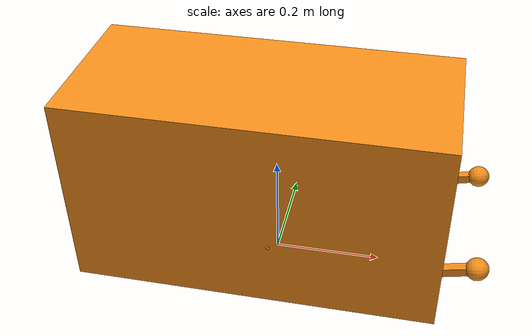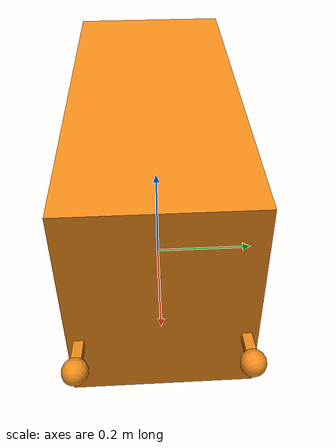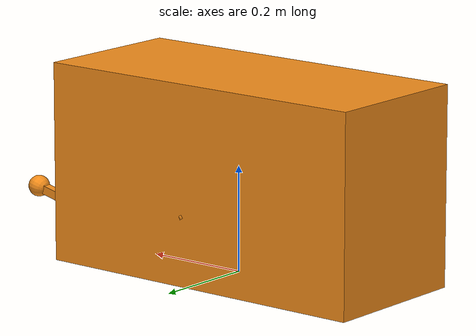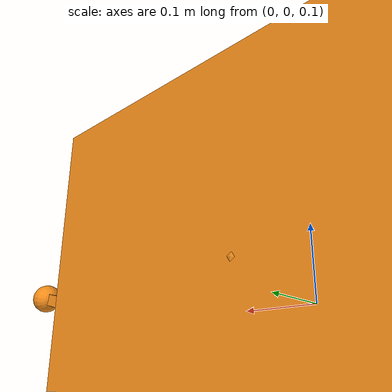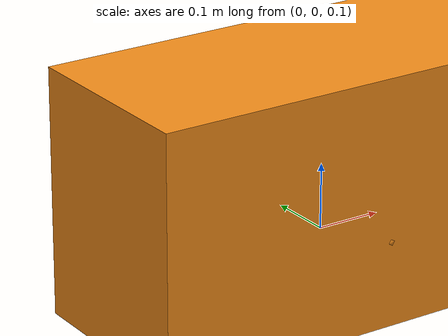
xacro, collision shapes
<?xml version="1.0" ?>
<robot name="a1_highlevel_robot" xmlns:xacro="http://ros.org/wiki/xacro">

  <xacro:arg name="laser_visual" default="false"/> <!--  visualize laser in gazebo -->
  <xacro:arg name="imu_visual"   default="false"/> <!--  visualize imu in gazebo -->

  <xacro:arg name="lidar"         default="true"/> <!--  add lidar (hokuyo UST-10LX) simulation -->
  <xacro:arg name="depth_camera"  default="false"/> <!--  add depth camera (realsense D435) simulation -->

  <xacro:arg name="fixed_legs"   default="false"/> <!--  if true fix leg joints in place, needed for high level simulation -->

  <xacro:include filename="$(find a1_description)/urdf/a1_const.xacro"/>
  <xacro:include filename="$(find a1_description)/urdf/backpack_const_v2.xacro"/>
  <xacro:include filename="$(find a1_description)/urdf/common_properties.xacro"/>
  <xacro:include filename="$(find a1_description)/urdf/hokuyo_ust10.urdf.xacro" />
  <xacro:include filename="$(find a1_description)/urdf/_d435.urdf.xacro" />

  <!-- choose between fixed or free leg joints -->
  <xacro:if value="$(arg fixed_legs)">
    <xacro:include filename="$(find a1_description)/urdf/leg_fixed.xacro"/>
  </xacro:if>
  <xacro:unless value="$(arg fixed_legs)">
    <xacro:include filename="$(find a1_description)/urdf/leg.xacro"/>
  </xacro:unless>

  <xacro:property name="laser_topic" value="/scan"/>

  <!-- root link, on the ground just below the model origin -->
  <link name="base_footprint">
   <visual>
      <origin xyz="0 0 0" rpy="0 0 0" />
      <geometry>
        <box size="0.001 0.001 0.001" />
      </geometry>
    </visual>
  </link>
  <!-- when used for the robot state publisher not in simulation, this tf won't be broadcasted -->
  <joint name="base_link_joint" type="fixed">
    <origin xyz="0.0 0 ${base_link_height}" rpy="0 0 0" />
    <parent link="base_footprint"/>
    <child link="base_link" />
  </joint>

  <!-- Robot Trunk -->
  <link name="base_link">
    <visual>
        <origin rpy="0 0 0" xyz="0 0 0"/>
        <geometry>
            <mesh filename="package://a1_description/meshes/trunk.dae" scale="1 1 1"/>
        </geometry>
        <material name="orange"/>
    </visual>
    <visual>
        <origin xyz="${backpack_mesh_x} ${backpack_mesh_y} ${backpack_mesh_z}" rpy="0 0 0"/>
        <geometry>
            <mesh filename="package://a1_description/meshes/backpack_mesh.stl" scale="0.001 0.001 0.001"/>
        </geometry>
        <material name="grey"/>
    </visual>

    <collision>
        <origin rpy="0 0 0" xyz="${boxcoll_x} ${boxcoll_y} ${boxcoll_z}"/>
        <geometry>
            <box size="${boxcoll_length} ${boxcoll_width} ${boxcoll_height}"/>
        </geometry>
    </collision>
    <inertial>
        <origin rpy="0 0 0" xyz="${trunk_com_x} ${trunk_com_y} ${trunk_com_z}"/>
        <mass value="50" />
        <inertia ixx="50.0" ixy="0.0" ixz="0.0"
            iyy="50.0" iyz="0.0"
            izz="50.0" />
    </inertial>
    </link>

    <xacro:leg name="FR" mirror="-1" mirror_dae="False" front_hind="1" front_hind_dae="True">
        <origin rpy="0 0 0" xyz="${leg_offset_x} ${-leg_offset_y} 0"/>
    </xacro:leg>

    <xacro:leg name="FL" mirror="1" mirror_dae="True" front_hind="1" front_hind_dae="True">
        <origin rpy="0 0 0" xyz="${leg_offset_x} ${leg_offset_y} 0"/>
    </xacro:leg>

    <xacro:leg name="RR" mirror="-1" mirror_dae="False" front_hind="-1" front_hind_dae="False">
        <origin rpy="0 0 0" xyz="${-leg_offset_x} ${-leg_offset_y} 0"/>
    </xacro:leg>

    <xacro:leg name="RL" mirror="1" mirror_dae="True" front_hind="-1" front_hind_dae="False">
        <origin rpy="0 0 0" xyz="${-leg_offset_x} ${leg_offset_y} 0"/>
    </xacro:leg>

    <!-- IMU -->
    <joint name="imu_joint" type="fixed">
        <parent link="base_link"/>
        <child link="imu_link"/>
        <origin rpy="0 0 0" xyz="0 0 0"/>
    </joint>

    <link name="imu_link">
        <inertial>
            <mass value="0.001"/>
            <origin rpy="0 0 0" xyz="0 0 0"/>
            <inertia ixx="0.0001" ixy="0" ixz="0" iyy="0.0001" iyz="0" izz="0.0001"/>
        </inertial>
        <visual>
            <origin rpy="0 0 0" xyz="0 0 0"/>
            <geometry>
                <box size="0.001 0.001 0.001"/>
            </geometry>
            <material name="red"/>
        </visual>
        <collision>
            <origin rpy="0 0 0" xyz="0 0 0"/>
            <geometry>
                <box size=".001 .001 .001"/>
            </geometry>
        </collision>
    </link>

  <!-- Hokuyo UST10 -->
  <xacro:if value="$(arg lidar)">
    <xacro:hokuyo_ust10_mount topic="${laser_topic}" prefix="hokuyo" parent_link="base_link" laser_visual="$(arg laser_visual)">
      <origin xyz="${laser_base_x} ${laser_base_y} ${laser_base_z}" rpy="0 0 0" />
    </xacro:hokuyo_ust10_mount>
  </xacro:if>

  <!-- Realsense D435 depth camera -->
  <xacro:if value="$(arg depth_camera)">
    <xacro:sensor_d435 parent="base_link" color_width="${rs_color_width}" color_height="${rs_color_height}" color_fps="${rs_color_fps}"
        depth_width="${rs_depth_width}" depth_height="${rs_depth_height}" depth_fps="${rs_depth_fps}">
      <origin xyz="${camera_base_x} ${camera_base_y} ${camera_base_z}" rpy="0 0 0"/>
    </xacro:sensor_d435>
  </xacro:if>

  <!-- Gazebo things -->
  <gazebo reference="imu_link">
    <sensor type="imu" name="imu">
      <always_on>true</always_on>
      <visualize>$(arg imu_visual)</visualize>
    </sensor>
    <material>Gazebo/FlatBlack</material>
  </gazebo>

  <gazebo>
    <plugin name="object_controller" filename="libgazebo_ros_planar_move.so">
      <commandTopic>cmd_vel_sim</commandTopic>
      <odometryTopic>odom_sim</odometryTopic>
      <odometryFrame>odom</odometryFrame>
      <odometryRate>50.0</odometryRate>
      <robotBaseFrame>base_footprint</robotBaseFrame>
    </plugin>
  </gazebo>

  <gazebo>
    <plugin name="imu_plugin" filename="libgazebo_ros_imu.so">
      <alwaysOn>true</alwaysOn>
      <bodyName>imu_link</bodyName>
      <frameName>imu_link</frameName>
      <topicName>imu</topicName>
      <serviceName>imu_service</serviceName>
      <gaussianNoise>0.0</gaussianNoise>
      <updateRate>0</updateRate>
      <imu>
        <noise>
          <type>gaussian</type>
          <rate>
            <mean>0.0</mean>
            <stddev>2e-4</stddev>
            <bias_mean>0.0000075</bias_mean>
            <bias_stddev>0.0000008</bias_stddev>
          </rate>
          <accel>
            <mean>0.0</mean>
            <stddev>1.7e-2</stddev>
            <bias_mean>0.1</bias_mean>
            <bias_stddev>0.001</bias_stddev>
          </accel>
        </noise>
      </imu>
    </plugin>
  </gazebo>

  <!-- ground truth -->
  <gazebo>
    <plugin name="p3d_base_controller" filename="libgazebo_ros_p3d.so">
      <alwaysOn>true</alwaysOn>
      <updateRate>50.0</updateRate>
      <bodyName>base_footprint</bodyName>
      <topicName>base_pose_ground_truth</topicName>
      <gaussianNoise>0.01</gaussianNoise>
      <frameName>map</frameName>
      <!-- initialize odometry for fake localization -->
      <xyzOffsets>0 0 0</xyzOffsets>
      <rpyOffsets>0 0 0</rpyOffsets>
    </plugin>
  </gazebo>

</robot>

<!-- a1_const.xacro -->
<robot name="a1_description" xmlns:xacro="http://www.ros.org/wiki/xacro">

    <!-- Constants for robot dimensions -->
    <xacro:property name="PI" value="3.1415926535897931"/>
    <xacro:property name="stick_mass" value="0.00001"/>

    <!-- simplified collision value -->
    <xacro:property name="trunk_width" value="0.194"/>
    <xacro:property name="trunk_length" value="0.267"/>
    <xacro:property name="trunk_height" value="0.114"/>
    <xacro:property name="hip_radius" value="0.046"/>
    <xacro:property name="hip_length" value="0.04"/>
    <xacro:property name="thigh_shoulder_radius" value="0.041"/>
    <xacro:property name="thigh_shoulder_length" value="0.032"/>
    <xacro:property name="thigh_width" value="0.0245"/>
    <xacro:property name="thigh_height" value="0.034"/>
    <xacro:property name="calf_width" value="0.016"/>
    <xacro:property name="calf_height" value="0.016"/>
    <xacro:property name="foot_radius" value="0.02"/>
    <xacro:property name="stick_radius" value="0.01"/>
    <xacro:property name="stick_length" value="0.2"/>

    <!-- kinematic value -->
    <xacro:property name="thigh_offset" value="0.0838"/>
    <xacro:property name="thigh_length" value="0.2"/>
    <xacro:property name="calf_length" value="0.2"/>

    <!-- leg offset from trunk center value -->
    <xacro:property name="leg_offset_x" value="0.1805"/>
    <xacro:property name="leg_offset_y" value="0.047"/>
    <xacro:property name="trunk_offset_z" value="0.01675"/>
    <xacro:property name="hip_offset" value="0.065"/>

    <!-- joint limits -->
    <xacro:property name="damping" value="0"/>
    <xacro:property name="friction" value="0"/>
    <xacro:property name="hip_max" value="46"/>
    <xacro:property name="hip_min" value="-46"/>
    <xacro:property name="hip_velocity_max" value="21"/>
    <xacro:property name="hip_torque_max" value="33.5"/>
    <xacro:property name="thigh_max" value="240"/>
    <xacro:property name="thigh_min" value="-60"/>
    <xacro:property name="thigh_velocity_max" value="21"/>
    <xacro:property name="thigh_torque_max" value="33.5"/>
    <xacro:property name="calf_max" value="-52.5"/>
    <xacro:property name="calf_min" value="-154.5"/>
    <xacro:property name="calf_velocity_max" value="21"/>
    <xacro:property name="calf_torque_max" value="33.5"/>

    <!-- dynamics inertial value        total 13.9kg -->
    <!-- trunk -->
    <xacro:property name="trunk_mass" value="6.0"/>
    <xacro:property name="trunk_com_x" value="0.0000"/>
    <xacro:property name="trunk_com_y" value="0.0041"/>
    <xacro:property name="trunk_com_z" value="-0.0005"/>
    <xacro:property name="trunk_ixx" value="0.0158533"/>
    <xacro:property name="trunk_ixy" value="-0.0000366"/>
    <xacro:property name="trunk_ixz" value="-0.0000611"/>
    <xacro:property name="trunk_iyy" value="0.0377999"/>
    <xacro:property name="trunk_iyz" value="-0.0000275"/>
    <xacro:property name="trunk_izz" value="0.0456542"/>

    <!-- hip (left front) -->
    <xacro:property name="hip_mass" value="0.595"/>
    <xacro:property name="hip_com_x" value="-0.003875"/>
    <xacro:property name="hip_com_y" value="0.001622"/>
    <xacro:property name="hip_com_z" value="0.000042"/>
    <xacro:property name="hip_ixx" value="0.000402747"/>
    <xacro:property name="hip_ixy" value="-0.000008709"/>
    <xacro:property name="hip_ixz" value="-0.000000297"/>
    <xacro:property name="hip_iyy" value="0.000691123"/>
    <xacro:property name="hip_iyz" value="-0.000000545"/>
    <xacro:property name="hip_izz" value="0.000487919"/>

    <!-- thigh -->
    <xacro:property name="thigh_mass" value="0.888"/>
    <xacro:property name="thigh_com_x" value="-0.003574"/>
    <xacro:property name="thigh_com_y" value="-0.019529"/>
    <xacro:property name="thigh_com_z" value="-0.030323"/>
    <xacro:property name="thigh_ixx" value="0.005251806"/>
    <xacro:property name="thigh_ixy" value="-0.000002168"/>
    <xacro:property name="thigh_ixz" value="0.000346889"/>
    <xacro:property name="thigh_iyy" value="0.005000475"/>
    <xacro:property name="thigh_iyz" value="-0.000028174"/>
    <xacro:property name="thigh_izz" value="0.001110200"/>

    <!-- calf -->
    <xacro:property name="calf_mass" value="0.151"/>
    <xacro:property name="calf_com_x" value="0.007105"/>
    <xacro:property name="calf_com_y" value="-0.000239"/>
    <xacro:property name="calf_com_z" value="-0.096933"/>
    <xacro:property name="calf_ixx" value="0.002344758"/>
    <xacro:property name="calf_ixy" value="0.0"/>
    <xacro:property name="calf_ixz" value="-0.000141275"/>
    <xacro:property name="calf_iyy" value="0.002360755"/>
    <xacro:property name="calf_iyz" value="0.0"/>
    <xacro:property name="calf_izz" value="0.000031158"/>

    <!-- foot -->
    <xacro:property name="foot_mass" value="0.06"/>

</robot>

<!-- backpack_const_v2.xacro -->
<robot name="backpack_v1_description" xmlns:xacro="http://www.ros.org/wiki/xacro">

    <xacro:include filename="$(find a1_description)/urdf/a1_const.xacro"/>

    <!-- real height measured from rosbags (base_link is center of the robot trunk) -->
    <xacro:property name="base_link_height" value="0.283"/>

    <!-- backpack (box approx) size and center position relative to base_link -->
    <xacro:property name="backpack_length" value="0.355"/>
    <xacro:property name="backpack_width" value="0.20"/>
    <xacro:property name="backpack_height" value="0.071"/> <!-- 60mm height + 2*3mm + 5mm -->

    <xacro:property name="backpack_x" value="0.0"/>
    <xacro:property name="backpack_y" value="0.0"/>
    <xacro:property name="backpack_z" value="${backpack_height/2 + trunk_height/2}"/>

    <!-- origin of the CAD mesh -->
    <xacro:property name="backpack_mesh_x" value="${backpack_x-0.0875}"/>
    <xacro:property name="backpack_mesh_y" value="${backpack_y}"/>
    <xacro:property name="backpack_mesh_z" value="${backpack_z-backpack_height/2+0.006}"/>

    <!-- lidar base position relative to base_link -->
    <xacro:property name="laser_base_x" value="0.085"/> <!-- see from cad files, top body-->
    <xacro:property name="laser_base_y" value="0.0"/>
    <xacro:property name="laser_base_z" value="0.131"/> <!-- trunk_height/2 (0.114/2) + backpack_height + 3mm adepter = -->

    <!-- realsense camer position relative to base_link -->
    <xacro:property name="camera_base_x" value="0.24"/> <!-- see from cad files, top body-->
    <xacro:property name="camera_base_y" value="0.0"/>
    <xacro:property name="camera_base_z" value="0.057"/> <!-- trunk_height/2 (0.114/2) + 0.005 = -->

    <!--whole robot box collision approx (used for trunk collision), except for hokuyo -->
    <xacro:property name="boxcoll_length_front" value="${backpack_length/2 + 0.14}"/>
    <xacro:property name="boxcoll_length_back" value="${backpack_length/2 + 0.18}"/>

    <xacro:property name="boxcoll_length" value="${boxcoll_length_front + boxcoll_length_back}"/>
    <xacro:property name="boxcoll_width" value="${backpack_width + 0.10}"/>
    <xacro:property name="boxcoll_height" value="${base_link_height+backpack_height/2+trunk_height/2}"/>

    <xacro:property name="boxcoll_x" value="${boxcoll_length_front/2-boxcoll_length_back/2}"/>
    <xacro:property name="boxcoll_y" value="0"/>
    <xacro:property name="boxcoll_z" value="${trunk_height/4.0+backpack_height/4-base_link_height/2.0}"/>

    <!-- legs position used only for visualization (calculated using  base_link_height,thigh_length=calf_length) -->
    <xacro:property name="leg_thigh_angle" value="0.79"/>
    <xacro:property name="leg_calf_angle" value="-1.68"/>

    <!-- legs visual boxes approx (just for visualization). Positions relative to base link -->

    <!-- Realsense simulation parameters -->
    <xacro:property name="rs_color_width" value="192"/>
    <xacro:property name="rs_color_height" value="108"/>
    <xacro:property name="rs_color_fps" value="15.0"/>
    <xacro:property name="rs_depth_width" value="128"/>
    <xacro:property name="rs_depth_height" value="72"/>
    <xacro:property name="rs_depth_fps" value="15.0"/>

</robot>

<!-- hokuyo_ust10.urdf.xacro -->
<robot xmlns:xacro="http://ros.org/wiki/xacro">
  <xacro:macro name="hokuyo_ust10_mount" params="prefix topic parent_link laser_visual min_angle:=-2.35619 max_angle:=2.35619 *origin">

    <xacro:macro name="hokuyo_ust10" params="frame:=laser_link topic:=scan sample_size:=720 update_rate:=50
               min_angle:=-2.35619 max_angle:=2.35619 min_range:=0.1 max_range:=30.0 robot_namespace:=/">
      <link name="${frame}">
        <inertial>
          <mass value="1.1" />
          <origin xyz="0 0 0" />
          <inertia ixx="${0.0833333 * 1.1 * (0.102*0.102 + 0.152*0.152)}" ixy="0.0" ixz="0.0"
            iyy="${0.0833333 * 1.1 * (0.105*0.105 + 0.152*0.152)}" iyz="0.0"
            izz="${0.0833333 * 1.1 * (0.105*0.105 + 0.102*0.102)}" />
        </inertial>
      </link>

      <gazebo reference="${frame}">
        <turnGravityOff>true</turnGravityOff>
        <sensor type="ray" name="${frame}">
          <pose>0 0 0 0 0 0</pose>
          <visualize>${laser_visual}</visualize>
          <update_rate>${update_rate}</update_rate>
          <ray>
            <scan>
              <horizontal>
                <samples>${sample_size}</samples>
                <resolution>1</resolution>
                <min_angle>${min_angle}</min_angle>
                <max_angle>${max_angle}</max_angle>
              </horizontal>
            </scan>
            <range>
              <min>${min_range}</min>
              <max>${max_range}</max>
              <resolution>0.01</resolution>
            </range>
            <noise>
              <type>gaussian</type>
              <mean>0.0</mean>
              <stddev>0.001</stddev>
            </noise>
          </ray>
          <plugin name="gazebo_ros_laser" filename="libgazebo_ros_laser.so">
            <topicName>${topic}</topicName>
            <frameName>${frame}</frameName>
            <robotNamespace>${robot_namespace}</robotNamespace>
          </plugin>
        </sensor>
      </gazebo>
    </xacro:macro>

    <xacro:hokuyo_ust10 frame="laser" topic="${topic}"/>

    <joint name="${prefix}_laser_mount_joint" type="fixed">
      <xacro:insert_block name="origin" />
      <parent link="${parent_link}" />
      <child link="${prefix}_laser_mount" />
    </joint>

    <link name="${prefix}_laser_mount">
      <visual>
        <origin xyz="0 0 0" rpy="0 0 0" />
        <geometry>
          <!-- Origin of this mesh is the base of the bracket. -->
          <mesh filename="package://a1_description/meshes/hokuyo_ust10.stl" />
        </geometry>
        <material name="grey" />
      </visual>
    </link>

    <joint name="${prefix}_laser_joint" type="fixed">
      <!-- This offset is from the base of the bracket to the LIDAR's focal point. -->
      <origin xyz="0 0 0.0474" rpy="0 0 0" />
      <parent link="${prefix}_laser_mount" />
      <child link="laser" />
    </joint>

    <gazebo reference="${prefix}_laser_mount">
      <material>Gazebo/DarkGrey</material>
    </gazebo>

  </xacro:macro>

</robot>

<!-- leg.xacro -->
<robot xmlns:xacro="http://www.ros.org/wiki/xacro">

    <xacro:include filename="$(find a1_description)/urdf/transmission.xacro"/>
    <xacro:include filename="$(find a1_description)/urdf/backpack_const_v2.xacro"/>

    <xacro:macro name="leg" params="name mirror mirror_dae front_hind front_hind_dae *origin">

        <joint name="${name}_hip_joint" type="revolute">
            <xacro:insert_block name="origin"/>
            <parent link="base_link"/>
            <child link="${name}_hip"/>
            <axis xyz="1 0 0"/>
            <dynamics damping="${damping}" friction="${friction}"/>
            <xacro:if value="${(mirror_dae == True)}">
                <limit effort="${hip_torque_max}" velocity="${hip_velocity_max}" lower="${hip_min*PI/180.0}" upper="${hip_max*PI/180.0}"/>
            </xacro:if>
            <xacro:if value="${(mirror_dae == False)}">
                <limit effort="${hip_torque_max}" velocity="${hip_velocity_max}" lower="${-hip_max*PI/180.0}" upper="${-hip_min*PI/180.0}"/>
            </xacro:if>
        </joint>

        <link name="${name}_hip">
            <visual>
                <xacro:if value="${(mirror_dae == True) and (front_hind_dae == True)}">
                    <origin rpy="0 0 0" xyz="0 0 0"/>
                </xacro:if>
                <xacro:if value="${(mirror_dae == False) and (front_hind_dae == True)}">
                    <origin rpy="${PI} 0 0" xyz="0 0 0"/>
                </xacro:if>
                <xacro:if value="${(mirror_dae == True) and (front_hind_dae == False)}">
                    <origin rpy="0 ${PI} 0" xyz="0 0 0"/>
                </xacro:if>
                <xacro:if value="${(mirror_dae == False) and (front_hind_dae == False)}">
                    <origin rpy="${PI} ${PI} 0" xyz="0 0 0"/>
                </xacro:if>
                <geometry>
                    <mesh filename="package://a1_description/meshes/hip.dae" scale="1 1 1"/>
                </geometry>
                <material name="orange"/>
            </visual>
            <collision>
                <origin rpy="${PI/2.0} 0 0" xyz="0 0 0"/>
                <geometry>
                    <cylinder length="${hip_length}" radius="${hip_radius}"/>
                </geometry>
            </collision>
            <inertial>
                <origin rpy="0 0 0" xyz="${hip_com_x*front_hind} ${hip_com_y*mirror} ${hip_com_z}"/>
                <mass value="${hip_mass}"/>
                <inertia
                    ixx="${hip_ixx}" ixy="${hip_ixy*mirror*front_hind}" ixz="${hip_ixz*front_hind}"
                    iyy="${hip_iyy}" iyz="${hip_iyz*mirror}"
                    izz="${hip_izz}"/>
            </inertial>
        </link>

        <joint name="${name}_hip_fixed" type="fixed">
            <origin rpy="0 0 0" xyz="0 ${(thigh_shoulder_length/2.0+hip_offset)*mirror} 0"/>
            <parent link="${name}_hip"/>
            <child link="${name}_thigh_shoulder"/>
        </joint>

        <!-- this link is only for collision -->
        <link name="${name}_thigh_shoulder">
            <collision>
                <origin rpy="${PI/2.0} 0 0" xyz="0 0 0"/>
                <geometry>
                    <cylinder length="${thigh_shoulder_length}" radius="${thigh_shoulder_radius}"/>
                </geometry>
            </collision>
        </link>

        <joint name="${name}_thigh_joint" type="revolute">
            <origin rpy="0 0 0" xyz="0 ${thigh_offset*mirror} 0"/>
            <parent link="${name}_hip"/>
            <child link="${name}_thigh"/>
            <axis xyz="0 1 0"/>
            <dynamics damping="${damping}" friction="${friction}"/>
            <limit effort="${thigh_torque_max}" velocity="${thigh_velocity_max}" lower="${thigh_min*PI/180.0}" upper="${thigh_max*PI/180.0}"/>
        </joint>

        <link name="${name}_thigh">
            <visual>
                <origin rpy="0 0 0" xyz="0 0 0"/>
                <geometry>
                    <xacro:if value="${mirror_dae == True}">
                        <mesh filename="package://a1_description/meshes/thigh.dae" scale="1 1 1"/>
                    </xacro:if>
                    <xacro:if value="${mirror_dae == False}">
                        <mesh filename="package://a1_description/meshes/thigh_mirror.dae" scale="1 1 1"/>
                    </xacro:if>
                </geometry>
                <material name="orange"/>
            </visual>
            <collision>
                <origin rpy="0 ${PI/2.0} 0" xyz="0 0 ${-thigh_length/2.0}"/>
                <geometry>
                    <box size="${thigh_length} ${thigh_width} ${thigh_height}"/>
                </geometry>
            </collision>
            <inertial>
                <origin rpy="0 0 0" xyz="${thigh_com_x} ${thigh_com_y*mirror} ${thigh_com_z}"/>
                <mass value="${thigh_mass}"/>
                <inertia
                    ixx="${thigh_ixx}" ixy="${thigh_ixy*mirror}" ixz="${thigh_ixz}"
                    iyy="${thigh_iyy}" iyz="${thigh_iyz*mirror}"
                    izz="${thigh_izz}"/>
            </inertial>
        </link>

        <joint name="${name}_calf_joint" type="revolute">
            <origin rpy="0 0 0" xyz="0 0 ${-thigh_length}"/>
            <parent link="${name}_thigh"/>
            <child link="${name}_calf"/>
            <axis xyz="0 1 0"/>
            <dynamics damping="${damping}" friction="${friction}"/>
            <limit effort="${calf_torque_max}" velocity="${calf_velocity_max}" lower="${calf_min*PI/180.0}" upper="${calf_max*PI/180.0}"/>
        </joint>

        <link name="${name}_calf">
            <visual>
                <origin rpy="0 0 0" xyz="0 0 0"/>
                <geometry>
                    <mesh filename="package://a1_description/meshes/calf.dae" scale="1 1 1"/>
                </geometry>
                <material name="orange"/>
            </visual>
            <collision>
                <origin rpy="0 ${PI/2.0} 0" xyz="0 0 ${-calf_length/2.0}"/>
                <geometry>
                    <box size="${calf_length} ${calf_width} ${calf_height}"/>
                </geometry>
            </collision>
            <inertial>
                <origin rpy="0 0 0" xyz="${calf_com_x} ${calf_com_y} ${calf_com_z}"/>
                <mass value="${calf_mass}"/>
                <inertia
                    ixx="${calf_ixx}" ixy="${calf_ixy}" ixz="${calf_ixz}"
                    iyy="${calf_iyy}" iyz="${calf_iyz}"
                    izz="${calf_izz}"/>
            </inertial>
        </link>

        <joint name="${name}_foot_fixed" type="fixed">
            <origin rpy="0 0 0" xyz="0 0 ${-(calf_length)}"/>
            <parent link="${name}_calf"/>
            <child link="${name}_foot"/>
        </joint>

        <link name="${name}_foot">
            <visual>
                <origin rpy="0 0 0" xyz="0 0 0"/>
                <geometry>
                    <sphere radius="${foot_radius-0.01}"/>
                </geometry>
                <material name="orange"/>
            </visual>
            <collision>
                <origin rpy="0 0 0" xyz="0 0 0"/>
                <geometry>
                    <sphere radius="${foot_radius}"/>
                </geometry>
            </collision>
            <inertial>
                <mass value="${foot_mass}"/>
                <inertia
                    ixx="${(2*foot_mass)/5.0*(foot_radius*foot_radius)}" ixy="0.0" ixz="0.0"
                    iyy="${(2*foot_mass)/5.0*(foot_radius*foot_radius)}" iyz="0.0"
                    izz="${(2*foot_mass)/5.0*(foot_radius*foot_radius)}"/>
            </inertial>
        </link>

        <xacro:leg_transmission name="${name}"/>
    </xacro:macro>
</robot>
